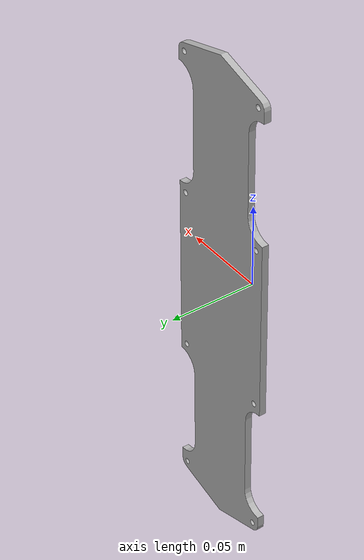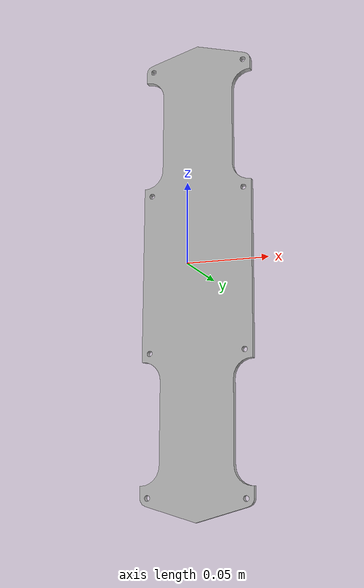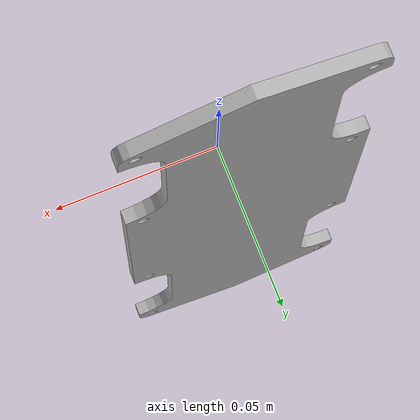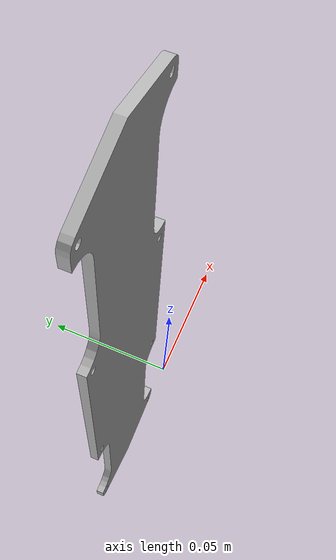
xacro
<?xml version="1.0" ?>
<robot name="test_dummy_export_1" xmlns:xacro="http://www.ros.org/wiki/xacro">

<xacro:include filename="$(find test_dummy_export_1_description)/urdf/materials.xacro" />
<xacro:include filename="$(find test_dummy_export_1_description)/urdf/test_dummy_export_1.trans" />
<xacro:include filename="$(find test_dummy_export_1_description)/urdf/test_dummy_export_1.gazebo" />
<link name="base_link">
  <inertial>
    <origin xyz="-1.5271149684295476e-05 0.018622857125217992 -5.086883985350047e-05" rpy="0 0 0"/>
    <mass value="0.5252537896398036"/>
    <inertia ixx="0.003404" iyy="0.003565" izz="0.000162" ixy="-0.0" iyz="0.0" ixz="-0.0"/>
  </inertial>
  <visual>
    <origin xyz="0 0 0" rpy="0 0 0"/>
    <geometry>
      <mesh filename="package://test_dummy_export_1_description/meshes/base_link.stl" scale="0.001 0.001 0.001"/>
    </geometry>
    <material name="silver"/>
  </visual>
  <collision>
    <origin xyz="0 0 0" rpy="0 0 0"/>
    <geometry>
      <mesh filename="package://test_dummy_export_1_description/meshes/base_link.stl" scale="0.001 0.001 0.001"/>
    </geometry>
  </collision>
</link>

</robot>

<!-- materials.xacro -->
<robot name="test_dummy_export_1" xmlns:xacro="http://www.ros.org/wiki/xacro" >

<material name="silver">
  <color rgba="0.700 0.700 0.700 1.000"/>
</material>

</robot>

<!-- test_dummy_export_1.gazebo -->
<robot name="test_dummy_export_1" xmlns:xacro="http://www.ros.org/wiki/xacro" >

<xacro:property name="body_color" value="Gazebo/Silver" />

<gazebo>
  <plugin name="control" filename="libgazebo_ros_control.so"/>
</gazebo>
<gazebo reference="base_link">
  <material>${body_color}</material>
  <mu1>0.2</mu1>
  <mu2>0.2</mu2>
  <selfCollide>true</selfCollide>
  <gravity>true</gravity>
</gazebo>

</robot>
